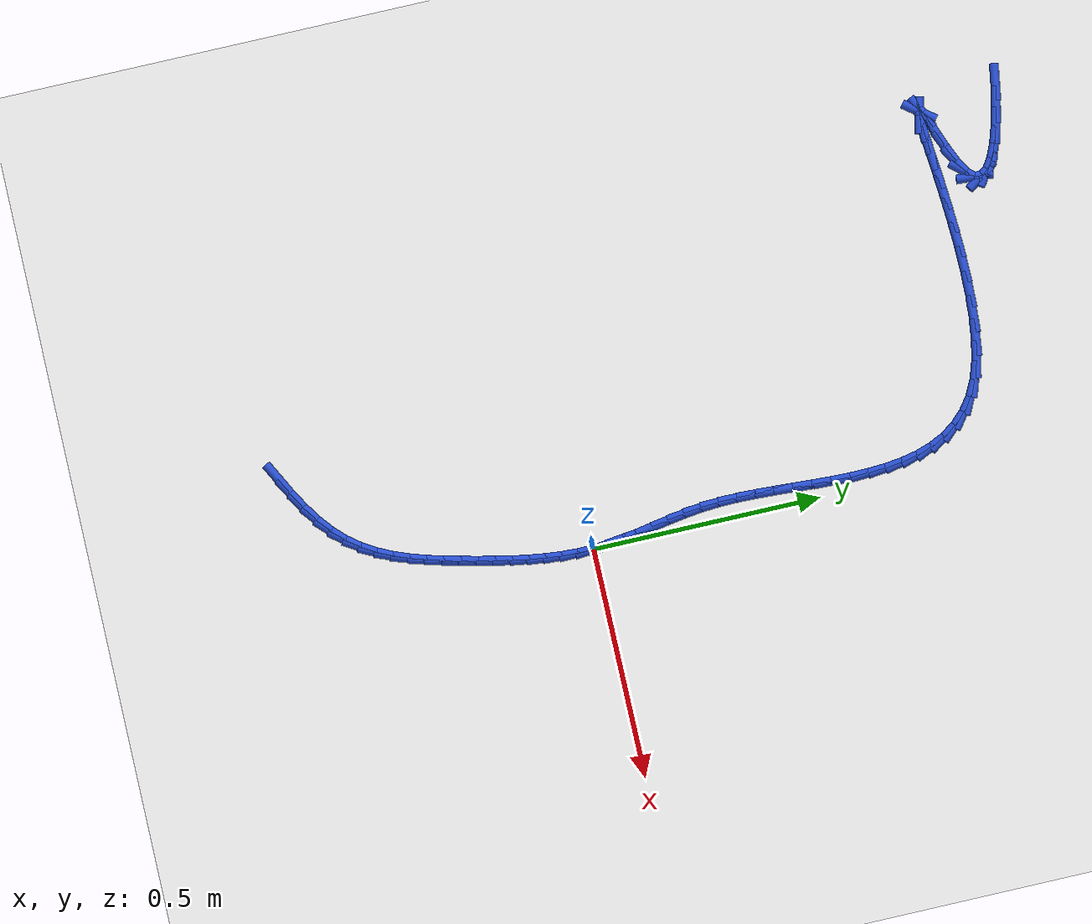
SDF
<sdf version="1.6">
 <world name="default">
  <model name="ground_plane">
   <static>1</static>
   <link name="link">
    <collision name="collision">
     <geometry><plane><normal>0 0 1</normal><size>100 100</size></plane></geometry>
     <surface><friction><ode><mu>100</mu><mu2>50</mu2></ode></friction></surface>
    </collision>
    <visual name="visual">
     <cast_shadows>0</cast_shadows>
     <geometry><plane><normal>0 0 1</normal><size>100 100</size></plane></geometry>
     <material>
      <script><uri>file://media/materials/scripts/gazebo.material</uri><name>Gazebo/WhiteGlow</name></script>
     </material>
    </visual>
   </link>
  </model>
  <model name="line">
   <link name="link_0">
    <pose>-3.469446951953614e-18 3.469446951953614e-17 0.01 0 1.57 -1.4946058032906044</pose>
    <collision name="collision">
     <geometry><cylinder><radius>0.01</radius><length>0.08</length></cylinder></geometry>
    </collision>
    <visual name="visual">
     <material>
      <script><name>Gazebo/Blue</name><uri>file://media/materials/scripts/gazebo.material</uri></script>
     </material>
     <geometry><cylinder><radius>0.01</radius><length>0.08</length></cylinder></geometry>
    </visual>
   </link>
   <link name="link_1">
    <pose>-0.0026124231290593435 0.034221659290385974 0.01 0 1.57 -1.4421469915469958</pose>
    <collision name="collision">
     <geometry><cylinder><radius>0.01</radius><length>0.08</length></cylinder></geometry>
    </collision>
    <visual name="visual">
     <material>
      <script><name>Gazebo/Blue</name><uri>file://media/materials/scripts/gazebo.material</uri></script>
     </material>
     <geometry><cylinder><radius>0.01</radius><length>0.08</length></cylinder></geometry>
    </visual>
   </link>
   <link name="link_2">
    <pose>-0.007023234924951189 0.06831783988330072 0.01 0 1.57 -1.4082024537275601</pose>
    <collision name="collision">
     <geometry><cylinder><radius>0.01</radius><length>0.08</length></cylinder></geometry>
    </collision>
    <visual name="visual">
     <material>
      <script><name>Gazebo/Blue</name><uri>file://media/materials/scripts/gazebo.material</uri></script>
     </material>
     <geometry><cylinder><radius>0.01</radius><length>0.08</length></cylinder></geometry>
    </visual>
   </link>
   <link name="link_3">
    <pose>-0.012634603180972658 0.1025247381335995 0.01 0 1.57 -1.392860196229387</pose>
    <collision name="collision">
     <geometry><cylinder><radius>0.01</radius><length>0.08</length></cylinder></geometry>
    </collision>
    <visual name="visual">
     <material>
      <script><name>Gazebo/Blue</name><uri>file://media/materials/scripts/gazebo.material</uri></script>
     </material>
     <geometry><cylinder><radius>0.01</radius><length>0.08</length></cylinder></geometry>
    </visual>
   </link>
   <link name="link_4">
    <pose>-0.018848695690420848 0.13707855039613773 0.01 0 1.57 -1.395617671099398</pose>
    <collision name="collision">
     <geometry><cylinder><radius>0.01</radius><length>0.08</length></cylinder></geometry>
    </collision>
    <visual name="visual">
     <material>
      <script><name>Gazebo/Blue</name><uri>file://media/materials/scripts/gazebo.material</uri></script>
     </material>
     <geometry><cylinder><radius>0.01</radius><length>0.08</length></cylinder></geometry>
    </visual>
   </link>
   <link name="link_5">
    <pose>-0.025067680246592876 0.17221547302577064 0.01 0 1.57 -1.4155855629912089</pose>
    <collision name="collision">
     <geometry><cylinder><radius>0.01</radius><length>0.08</length></cylinder></geometry>
    </collision>
    <visual name="visual">
     <material>
      <script><name>Gazebo/Blue</name><uri>file://media/materials/scripts/gazebo.material</uri></script>
     </material>
     <geometry><cylinder><radius>0.01</radius><length>0.08</length></cylinder></geometry>
    </visual>
   </link>
   <link name="link_6">
    <pose>-0.03069372464278583 0.20817170237735358 0.01 0 1.57 -1.451530832151726</pose>
    <collision name="collision">
     <geometry><cylinder><radius>0.01</radius><length>0.08</length></cylinder></geometry>
    </collision>
    <visual name="visual">
     <material>
      <script><name>Gazebo/Blue</name><uri>file://media/materials/scripts/gazebo.material</uri></script>
     </material>
     <geometry><cylinder><radius>0.01</radius><length>0.08</length></cylinder></geometry>
    </visual>
   </link>
   <link name="link_7">
    <pose>-0.03512899667229684 0.2451834348057419 0.01 0 1.57 -1.5015947000845757</pose>
    <collision name="collision">
     <geometry><cylinder><radius>0.01</radius><length>0.08</length></cylinder></geometry>
    </collision>
    <visual name="visual">
     <material>
      <script><name>Gazebo/Blue</name><uri>file://media/materials/scripts/gazebo.material</uri></script>
     </material>
     <geometry><cylinder><radius>0.01</radius><length>0.08</length></cylinder></geometry>
    </visual>
   </link>
   <link name="link_8">
    <pose>-0.03778361329504823 0.2834827907832505 0.01 0 1.57 -1.5531393959789488</pose>
    <collision name="collision">
     <geometry><cylinder><radius>0.01</radius><length>0.08</length></cylinder></geometry>
    </collision>
    <visual name="visual">
     <material>
      <script><name>Gazebo/Blue</name><uri>file://media/materials/scripts/gazebo.material</uri></script>
     </material>
     <geometry><cylinder><radius>0.01</radius><length>0.08</length></cylinder></geometry>
    </visual>
   </link>
   <link name="link_9">
    <pose>-0.038483009006625886 0.32308893946640915 0.01 0 1.57 1.5506167041044434</pose>
    <collision name="collision">
     <geometry><cylinder><radius>0.01</radius><length>0.08</length></cylinder></geometry>
    </collision>
    <visual name="visual">
     <material>
      <script><name>Gazebo/Blue</name><uri>file://media/materials/scripts/gazebo.material</uri></script>
     </material>
     <geometry><cylinder><radius>0.01</radius><length>0.08</length></cylinder></geometry>
    </visual>
   </link>
   <link name="link_10">
    <pose>-0.037663221066826215 0.36370796748838785 0.01 0 1.57 1.5259470286337846</pose>
    <collision name="collision">
     <geometry><cylinder><radius>0.01</radius><length>0.08</length></cylinder></geometry>
    </collision>
    <visual name="visual">
     <material>
      <script><name>Gazebo/Blue</name><uri>file://media/materials/scripts/gazebo.material</uri></script>
     </material>
     <geometry><cylinder><radius>0.01</radius><length>0.08</length></cylinder></geometry>
    </visual>
   </link>
   <link name="link_11">
    <pose>-0.03580912072811332 0.4050209221760414 0.01 0 1.57 1.5132045105530816</pose>
    <collision name="collision">
     <geometry><cylinder><radius>0.01</radius><length>0.08</length></cylinder></geometry>
    </collision>
    <visual name="visual">
     <material>
      <script><name>Gazebo/Blue</name><uri>file://media/materials/scripts/gazebo.material</uri></script>
     </material>
     <geometry><cylinder><radius>0.01</radius><length>0.08</length></cylinder></geometry>
    </visual>
   </link>
   <link name="link_12">
    <pose>-0.03340557924295126 0.446708850856224 0.01 0 1.57 1.5117400703557264</pose>
    <collision name="collision">
     <geometry><cylinder><radius>0.01</radius><length>0.08</length></cylinder></geometry>
    </collision>
    <visual name="visual">
     <material>
      <script><name>Gazebo/Blue</name><uri>file://media/materials/scripts/gazebo.material</uri></script>
     </material>
     <geometry><cylinder><radius>0.01</radius><length>0.08</length></cylinder></geometry>
    </visual>
   </link>
   <link name="link_13">
    <pose>-0.030937467863804132 0.4884528008557906 0.01 0 1.57 1.5214689738055565</pose>
    <collision name="collision">
     <geometry><cylinder><radius>0.01</radius><length>0.08</length></cylinder></geometry>
    </collision>
    <visual name="visual">
     <material>
      <script><name>Gazebo/Blue</name><uri>file://media/materials/scripts/gazebo.material</uri></script>
     </material>
     <geometry><cylinder><radius>0.01</radius><length>0.08</length></cylinder></geometry>
    </visual>
   </link>
   <link name="link_14">
    <pose>-0.028889657843136015 0.5299338195015956 0.01 0 1.57 1.5428656560708973</pose>
    <collision name="collision">
     <geometry><cylinder><radius>0.01</radius><length>0.08</length></cylinder></geometry>
    </collision>
    <visual name="visual">
     <material>
      <script><name>Gazebo/Blue</name><uri>file://media/materials/scripts/gazebo.material</uri></script>
     </material>
     <geometry><cylinder><radius>0.01</radius><length>0.08</length></cylinder></geometry>
    </visual>
   </link>
   <link name="link_15">
    <pose>-0.02774702043341098 0.5708329541204941 0.01 0 1.57 -1.5646109811323707</pose>
    <collision name="collision">
     <geometry><cylinder><radius>0.01</radius><length>0.08</length></cylinder></geometry>
    </collision>
    <visual name="visual">
     <material>
      <script><name>Gazebo/Blue</name><uri>file://media/materials/scripts/gazebo.material</uri></script>
     </material>
     <geometry><cylinder><radius>0.01</radius><length>0.08</length></cylinder></geometry>
    </visual>
   </link>
   <link name="link_16">
    <pose>-0.02799442688709313 0.6108312520393402 0.01 0 1.57 -1.5161215480757144</pose>
    <collision name="collision">
     <geometry><cylinder><radius>0.01</radius><length>0.08</length></cylinder></geometry>
    </collision>
    <visual name="visual">
     <material>
      <script><name>Gazebo/Blue</name><uri>file://media/materials/scripts/gazebo.material</uri></script>
     </material>
     <geometry><cylinder><radius>0.01</radius><length>0.08</length></cylinder></geometry>
    </visual>
   </link>
   <link name="link_17">
    <pose>-0.03011674845664654 0.6496097605849891 0.01 0 1.57 -1.4510143886595541</pose>
    <collision name="collision">
     <geometry><cylinder><radius>0.01</radius><length>0.08</length></cylinder></geometry>
    </collision>
    <visual name="visual">
     <material>
      <script><name>Gazebo/Blue</name><uri>file://media/materials/scripts/gazebo.material</uri></script>
     </material>
     <geometry><cylinder><radius>0.01</radius><length>0.08</length></cylinder></geometry>
    </visual>
   </link>
   <link name="link_18">
    <pose>-0.03459885639453528 0.6868495270842949 0.01 0 1.57 -1.3666066055802346</pose>
    <collision name="collision">
     <geometry><cylinder><radius>0.01</radius><length>0.08</length></cylinder></geometry>
    </collision>
    <visual name="visual">
     <material>
      <script><name>Gazebo/Blue</name><uri>file://media/materials/scripts/gazebo.material</uri></script>
     </material>
     <geometry><cylinder><radius>0.01</radius><length>0.08</length></cylinder></geometry>
    </visual>
   </link>
   <link name="link_19">
    <pose>-0.04192562195322343 0.7222315988641121 0.01 0 1.57 -1.260258799297225</pose>
    <collision name="collision">
     <geometry><cylinder><radius>0.01</radius><length>0.08</length></cylinder></geometry>
    </collision>
    <visual name="visual">
     <material>
      <script><name>Gazebo/Blue</name><uri>file://media/materials/scripts/gazebo.material</uri></script>
     </material>
     <geometry><cylinder><radius>0.01</radius><length>0.08</length></cylinder></geometry>
    </visual>
   </link>
   <link name="link_20">
    <pose>-0.0525819163851751 0.7554370232512961 0.01 0 1.57 -1.1304470077338153</pose>
    <collision name="collision">
     <geometry><cylinder><radius>0.01</radius><length>0.08</length></cylinder></geometry>
    </collision>
    <visual name="visual">
     <material>
      <script><name>Gazebo/Blue</name><uri>file://media/materials/scripts/gazebo.material</uri></script>
     </material>
     <geometry><cylinder><radius>0.01</radius><length>0.08</length></cylinder></geometry>
    </visual>
   </link>
   <link name="link_21">
    <pose>-0.06705261094285433 0.786146847572701 0.01 0 1.57 -0.9785095552409157</pose>
    <collision name="collision">
     <geometry><cylinder><radius>0.01</radius><length>0.08</length></cylinder></geometry>
    </collision>
    <visual name="visual">
     <material>
      <script><name>Gazebo/Blue</name><uri>file://media/materials/scripts/gazebo.material</uri></script>
     </material>
     <geometry><cylinder><radius>0.01</radius><length>0.08</length></cylinder></geometry>
    </visual>
   </link>
   <link name="link_22">
    <pose>-0.08582257687872528 0.8140421191551817 0.01 0 1.57 -0.810388008019312</pose>
    <collision name="collision">
     <geometry><cylinder><radius>0.01</radius><length>0.08</length></cylinder></geometry>
    </collision>
    <visual name="visual">
     <material>
      <script><name>Gazebo/Blue</name><uri>file://media/materials/scripts/gazebo.material</uri></script>
     </material>
     <geometry><cylinder><radius>0.01</radius><length>0.08</length></cylinder></geometry>
    </visual>
   </link>
   <link name="link_23">
    <pose>-0.10937668544525198 0.8388038853255926 0.01 0 1.57 -0.6366262468930142</pose>
    <collision name="collision">
     <geometry><cylinder><radius>0.01</radius><length>0.08</length></cylinder></geometry>
    </collision>
    <visual name="visual">
     <material>
      <script><name>Gazebo/Blue</name><uri>file://media/materials/scripts/gazebo.material</uri></script>
     </material>
     <geometry><cylinder><radius>0.01</radius><length>0.08</length></cylinder></geometry>
    </visual>
   </link>
   <link name="link_24">
    <pose>-0.1381998078948985 0.8601131934107883 0.01 0 1.57 -0.4694011049189898</pose>
    <collision name="collision">
     <geometry><cylinder><radius>0.01</radius><length>0.08</length></cylinder></geometry>
    </collision>
    <visual name="visual">
     <material>
      <script><name>Gazebo/Blue</name><uri>file://media/materials/scripts/gazebo.material</uri></script>
     </material>
     <geometry><cylinder><radius>0.01</radius><length>0.08</length></cylinder></geometry>
    </visual>
   </link>
   <link name="link_25">
    <pose>-0.1727768154801288 0.8776510907376236 0.01 0 1.57 -0.3194768551653633</pose>
    <collision name="collision">
     <geometry><cylinder><radius>0.01</radius><length>0.08</length></cylinder></geometry>
    </collision>
    <visual name="visual">
     <material>
      <script><name>Gazebo/Blue</name><uri>file://media/materials/scripts/gazebo.material</uri></script>
     </material>
     <geometry><cylinder><radius>0.01</radius><length>0.08</length></cylinder></geometry>
    </visual>
   </link>
   <link name="link_26">
    <pose>-0.2135224040643267 0.8911300944748518 0.01 0 1.57 -0.20392701906793143</pose>
    <collision name="collision">
     <geometry><cylinder><radius>0.01</radius><length>0.08</length></cylinder></geometry>
    </collision>
    <visual name="visual">
     <material>
      <script><name>Gazebo/Blue</name><uri>file://media/materials/scripts/gazebo.material</uri></script>
     </material>
     <geometry><cylinder><radius>0.01</radius><length>0.08</length></cylinder></geometry>
    </visual>
   </link>
   <link name="link_27">
    <pose>-0.259851551508749 0.9007110408940092 0.01 0 1.57 -0.1215271285258354</pose>
    <collision name="collision">
     <geometry><cylinder><radius>0.01</radius><length>0.08</length></cylinder></geometry>
    </collision>
    <visual name="visual">
     <material>
      <script><name>Gazebo/Blue</name><uri>file://media/materials/scripts/gazebo.material</uri></script>
     </material>
     <geometry><cylinder><radius>0.01</radius><length>0.08</length></cylinder></geometry>
    </visual>
   </link>
   <link name="link_28">
    <pose>-0.3104345983256323 0.9068886955822022 0.01 0 1.57 -0.06118965568954185</pose>
    <collision name="collision">
     <geometry><cylinder><radius>0.01</radius><length>0.08</length></cylinder></geometry>
    </collision>
    <visual name="visual">
     <material>
      <script><name>Gazebo/Blue</name><uri>file://media/materials/scripts/gazebo.material</uri></script>
     </material>
     <geometry><cylinder><radius>0.01</radius><length>0.08</length></cylinder></geometry>
    </visual>
   </link>
   <link name="link_29">
    <pose>-0.36392411754773313 0.9101657918738825 0.01 0 1.57 -0.01597128774711251</pose>
    <collision name="collision">
     <geometry><cylinder><radius>0.01</radius><length>0.08</length></cylinder></geometry>
    </collision>
    <visual name="visual">
     <material>
      <script><name>Gazebo/Blue</name><uri>file://media/materials/scripts/gazebo.material</uri></script>
     </material>
     <geometry><cylinder><radius>0.01</radius><length>0.08</length></cylinder></geometry>
    </visual>
   </link>
   <link name="link_30">
    <pose>-0.4189726822078089 0.9110450631035029 0.01 0 1.57 0.018380433122437503</pose>
    <collision name="collision">
     <geometry><cylinder><radius>0.01</radius><length>0.08</length></cylinder></geometry>
    </collision>
    <visual name="visual">
     <material>
      <script><name>Gazebo/Blue</name><uri>file://media/materials/scripts/gazebo.material</uri></script>
     </material>
     <geometry><cylinder><radius>0.01</radius><length>0.08</length></cylinder></geometry>
    </visual>
   </link>
   <link name="link_31">
    <pose>-0.4742328653386162 0.9100292426055155 0.01 0 1.57 0.04446410075200229</pose>
    <collision name="collision">
     <geometry><cylinder><radius>0.01</radius><length>0.08</length></cylinder></geometry>
    </collision>
    <visual name="visual">
     <material>
      <script><name>Gazebo/Blue</name><uri>file://media/materials/scripts/gazebo.material</uri></script>
     </material>
     <geometry><cylinder><radius>0.01</radius><length>0.08</length></cylinder></geometry>
    </visual>
   </link>
   <link name="link_32">
    <pose>-0.5283572399729122 0.9076210637143733 0.01 0 1.57 0.06377341812137298</pose>
    <collision name="collision">
     <geometry><cylinder><radius>0.01</radius><length>0.08</length></cylinder></geometry>
    </collision>
    <visual name="visual">
     <material>
      <script><name>Gazebo/Blue</name><uri>file://media/materials/scripts/gazebo.material</uri></script>
     </material>
     <geometry><cylinder><radius>0.01</radius><length>0.08</length></cylinder></geometry>
    </visual>
   </link>
   <link name="link_33">
    <pose>-0.5799983791434535 0.9043232597645285 0.01 0 1.57 0.07691674731030786</pose>
    <collision name="collision">
     <geometry><cylinder><radius>0.01</radius><length>0.08</length></cylinder></geometry>
    </collision>
    <visual name="visual">
     <material>
      <script><name>Gazebo/Blue</name><uri>file://media/materials/scripts/gazebo.material</uri></script>
     </material>
     <geometry><cylinder><radius>0.01</radius><length>0.08</length></cylinder></geometry>
    </visual>
   </link>
   <link name="link_34">
    <pose>-0.6278088558829971 0.9006385640904335 0.01 0 1.57 0.08351754673476734</pose>
    <collision name="collision">
     <geometry><cylinder><radius>0.01</radius><length>0.08</length></cylinder></geometry>
    </collision>
    <visual name="visual">
     <material>
      <script><name>Gazebo/Blue</name><uri>file://media/materials/scripts/gazebo.material</uri></script>
     </material>
     <geometry><cylinder><radius>0.01</radius><length>0.08</length></cylinder></geometry>
    </visual>
   </link>
   <link name="link_35">
    <pose>-0.6704412432242999 0.8970697100265408 0.01 0 1.57 0.08152851260966233</pose>
    <collision name="collision">
     <geometry><cylinder><radius>0.01</radius><length>0.08</length></cylinder></geometry>
    </collision>
    <visual name="visual">
     <material>
      <script><name>Gazebo/Blue</name><uri>file://media/materials/scripts/gazebo.material</uri></script>
     </material>
     <geometry><cylinder><radius>0.01</radius><length>0.08</length></cylinder></geometry>
    </visual>
   </link>
   <link name="link_36">
    <pose>-0.706548114200119 0.8941194309073028 0.01 0 1.57 0.06468880120953734</pose>
    <collision name="collision">
     <geometry><cylinder><radius>0.01</radius><length>0.08</length></cylinder></geometry>
    </collision>
    <visual name="visual">
     <material>
      <script><name>Gazebo/Blue</name><uri>file://media/materials/scripts/gazebo.material</uri></script>
     </material>
     <geometry><cylinder><radius>0.01</radius><length>0.08</length></cylinder></geometry>
    </visual>
   </link>
   <link name="link_37">
    <pose>-0.7347820418432112 0.8922904600671718 0.01 0 1.57 0.010777640823340822</pose>
    <collision name="collision">
     <geometry><cylinder><radius>0.01</radius><length>0.08</length></cylinder></geometry>
    </collision>
    <visual name="visual">
     <material>
      <script><name>Gazebo/Blue</name><uri>file://media/materials/scripts/gazebo.material</uri></script>
     </material>
     <geometry><cylinder><radius>0.01</radius><length>0.08</length></cylinder></geometry>
    </visual>
   </link>
   <link name="link_38">
    <pose>-0.7537955991863332 0.8920855308406005 0.01 0 1.57 -0.22374170483796854</pose>
    <collision name="collision">
     <geometry><cylinder><radius>0.01</radius><length>0.08</length></cylinder></geometry>
    </collision>
    <visual name="visual">
     <material>
      <script><name>Gazebo/Blue</name><uri>file://media/materials/scripts/gazebo.material</uri></script>
     </material>
     <geometry><cylinder><radius>0.01</radius><length>0.08</length></cylinder></geometry>
    </visual>
   </link>
   <link name="link_39">
    <pose>-0.7622413592622418 0.8940073765620411 0.01 0 1.57 0.9194741668668903</pose>
    <collision name="collision">
     <geometry><cylinder><radius>0.01</radius><length>0.08</length></cylinder></geometry>
    </collision>
    <visual name="visual">
     <material>
      <script><name>Gazebo/Blue</name><uri>file://media/materials/scripts/gazebo.material</uri></script>
     </material>
     <geometry><cylinder><radius>0.01</radius><length>0.08</length></cylinder></geometry>
    </visual>
   </link>
   <link name="link_40">
    <pose>-0.7587718951036945 0.8985587305659463 0.01 0 1.57 0.43048878484852804</pose>
    <collision name="collision">
     <geometry><cylinder><radius>0.01</radius><length>0.08</length></cylinder></geometry>
    </collision>
    <visual name="visual">
     <material>
      <script><name>Gazebo/Blue</name><uri>file://media/materials/scripts/gazebo.material</uri></script>
     </material>
     <geometry><cylinder><radius>0.01</radius><length>0.08</length></cylinder></geometry>
    </visual>
   </link>
   <link name="link_41">
    <pose>-0.7420397971591669 0.9062423232550538 0.01 0 1.57 0.3556529765919658</pose>
    <collision name="collision">
     <geometry><cylinder><radius>0.01</radius><length>0.08</length></cylinder></geometry>
    </collision>
    <visual name="visual">
     <material>
      <script><name>Gazebo/Blue</name><uri>file://media/materials/scripts/gazebo.material</uri></script>
     </material>
     <geometry><cylinder><radius>0.01</radius><length>0.08</length></cylinder></geometry>
    </visual>
   </link>
   <link name="link_42">
    <pose>-0.7122899624817576 0.9172928404972882 0.01 0 1.57 0.3572307348656074</pose>
    <collision name="collision">
     <geometry><cylinder><radius>0.01</radius><length>0.08</length></cylinder></geometry>
    </collision>
    <visual name="visual">
     <material>
      <script><name>Gazebo/Blue</name><uri>file://media/materials/scripts/gazebo.material</uri></script>
     </material>
     <geometry><cylinder><radius>0.01</radius><length>0.08</length></cylinder></geometry>
    </visual>
   </link>
   <link name="link_43">
    <pose>-0.6757174319126646 0.9309433372440624 0.01 0 1.57 0.402582470246729</pose>
    <collision name="collision">
     <geometry><cylinder><radius>0.01</radius><length>0.08</length></cylinder></geometry>
    </collision>
    <visual name="visual">
     <material>
      <script><name>Gazebo/Blue</name><uri>file://media/materials/scripts/gazebo.material</uri></script>
     </material>
     <geometry><cylinder><radius>0.01</radius><length>0.08</length></cylinder></geometry>
    </visual>
   </link>
   <link name="link_44">
    <pose>-0.6399068203657324 0.9461929513514199 0.01 0 1.57 0.523259841015723</pose>
    <collision name="collision">
     <geometry><cylinder><radius>0.01</radius><length>0.08</length></cylinder></geometry>
    </collision>
    <visual name="visual">
     <material>
      <script><name>Gazebo/Blue</name><uri>file://media/materials/scripts/gazebo.material</uri></script>
     </material>
     <geometry><cylinder><radius>0.01</radius><length>0.08</length></cylinder></geometry>
    </visual>
   </link>
   <link name="link_45">
    <pose>-0.6124346836049726 0.9620415843243194 0.01 0 1.57 0.8435571485170217</pose>
    <collision name="collision">
     <geometry><cylinder><radius>0.01</radius><length>0.08</length></cylinder></geometry>
    </collision>
    <visual name="visual">
     <material>
      <script><name>Gazebo/Blue</name><uri>file://media/materials/scripts/gazebo.material</uri></script>
     </material>
     <geometry><cylinder><radius>0.01</radius><length>0.08</length></cylinder></geometry>
    </visual>
   </link>
   <link name="link_46">
    <pose>-0.5984852726740374 0.977715821740542 0.01 0 1.57 1.5078199339795337</pose>
    <collision name="collision">
     <geometry><cylinder><radius>0.01</radius><length>0.08</length></cylinder></geometry>
    </collision>
    <visual name="visual">
     <material>
      <script><name>Gazebo/Blue</name><uri>file://media/materials/scripts/gazebo.material</uri></script>
     </material>
     <geometry><cylinder><radius>0.01</radius><length>0.08</length></cylinder></geometry>
    </visual>
   </link>
   <link name="link_47">
    <pose>-0.5975224465508996 0.9929842878908055 0.01 0 1.57 -0.9441405588081778</pose>
    <collision name="collision">
     <geometry><cylinder><radius>0.01</radius><length>0.08</length></cylinder></geometry>
    </collision>
    <visual name="visual">
     <material>
      <script><name>Gazebo/Blue</name><uri>file://media/materials/scripts/gazebo.material</uri></script>
     </material>
     <geometry><cylinder><radius>0.01</radius><length>0.08</length></cylinder></geometry>
    </visual>
   </link>
   <link name="link_48">
    <pose>-0.6081730205876004 1.0076949215681312 0.01 0 1.57 -0.5904359452761297</pose>
    <collision name="collision">
     <geometry><cylinder><radius>0.01</radius><length>0.08</length></cylinder></geometry>
    </collision>
    <visual name="visual">
     <material>
      <script><name>Gazebo/Blue</name><uri>file://media/materials/scripts/gazebo.material</uri></script>
     </material>
     <geometry><cylinder><radius>0.01</radius><length>0.08</length></cylinder></geometry>
    </visual>
   </link>
   <link name="link_49">
    <pose>-0.6290638101361814 1.0216956615655417 0.01 0 1.57 -0.415782775708621</pose>
    <collision name="collision">
     <geometry><cylinder><radius>0.01</radius><length>0.08</length></cylinder></geometry>
    </collision>
    <visual name="visual">
     <material>
      <script><name>Gazebo/Blue</name><uri>file://media/materials/scripts/gazebo.material</uri></script>
     </material>
     <geometry><cylinder><radius>0.01</radius><length>0.08</length></cylinder></geometry>
    </visual>
   </link>
   <link name="link_50">
    <pose>-0.6588216305486843 1.0348344466760586 0.01 0 1.57 -0.314668325253031</pose>
    <collision name="collision">
     <geometry><cylinder><radius>0.01</radius><length>0.08</length></cylinder></geometry>
    </collision>
    <visual name="visual">
     <material>
      <script><name>Gazebo/Blue</name><uri>file://media/materials/scripts/gazebo.material</uri></script>
     </material>
     <geometry><cylinder><radius>0.01</radius><length>0.08</length></cylinder></geometry>
    </visual>
   </link>
   <link name="link_51">
    <pose>-0.6960732971771507 1.0469592156927043 0.01 0 1.57 -0.24748580707257362</pose>
    <collision name="collision">
     <geometry><cylinder><radius>0.01</radius><length>0.08</length></cylinder></geometry>
    </collision>
    <visual name="visual">
     <material>
      <script><name>Gazebo/Blue</name><uri>file://media/materials/scripts/gazebo.material</uri></script>
     </material>
     <geometry><cylinder><radius>0.01</radius><length>0.08</length></cylinder></geometry>
    </visual>
   </link>
   <link name="link_52">
    <pose>-0.7394456253736219 1.0579179074085003 0.01 0 1.57 -0.19772708582464</pose>
    <collision name="collision">
     <geometry><cylinder><radius>0.01</radius><length>0.08</length></cylinder></geometry>
    </collision>
    <visual name="visual">
     <material>
      <script><name>Gazebo/Blue</name><uri>file://media/materials/scripts/gazebo.material</uri></script>
     </material>
     <geometry><cylinder><radius>0.01</radius><length>0.08</length></cylinder></geometry>
    </visual>
   </link>
   <link name="link_53">
    <pose>-0.7875654304901394 1.067558460616468 0.01 0 1.57 -0.15735412035748672</pose>
    <collision name="collision">
     <geometry><cylinder><radius>0.01</radius><length>0.08</length></cylinder></geometry>
    </collision>
    <visual name="visual">
     <material>
      <script><name>Gazebo/Blue</name><uri>file://media/materials/scripts/gazebo.material</uri></script>
     </material>
     <geometry><cylinder><radius>0.01</radius><length>0.08</length></cylinder></geometry>
    </visual>
   </link>
   <link name="link_210">
    <pose>-0.29774997016400834 -0.6232458484564712 0.01 0 1.57 0.48227275308044326</pose>
    <collision name="collision">
     <geometry><cylinder><radius>0.01</radius><length>0.08</length></cylinder></geometry>
    </collision>
    <visual name="visual">
     <material>
      <script><name>Gazebo/Blue</name><uri>file://media/materials/scripts/gazebo.material</uri></script>
     </material>
     <geometry><cylinder><radius>0.01</radius><length>0.08</length></cylinder></geometry>
    </visual>
   </link>
   <link name="link_211">
    <pose>-0.26107976639171265 -0.604048885984705 0.01 0 1.57 0.529767102975201</pose>
    <collision name="collision">
     <geometry><cylinder><radius>0.01</radius><length>0.08</length></cylinder></geometry>
    </collision>
    <visual name="visual">
     <material>
      <script><name>Gazebo/Blue</name><uri>file://media/materials/scripts/gazebo.material</uri></script>
     </material>
     <geometry><cylinder><radius>0.01</radius><length>0.08</length></cylinder></geometry>
    </visual>
   </link>
   <link name="link_212">
    <pose>-0.2261745399312988 -0.5836082385931232 0.01 0 1.57 0.5949936808608366</pose>
    <collision name="collision">
     <geometry><cylinder><radius>0.01</radius><length>0.08</length></cylinder></geometry>
    </collision>
    <visual name="visual">
     <material>
      <script><name>Gazebo/Blue</name><uri>file://media/materials/scripts/gazebo.material</uri></script>
     </material>
     <geometry><cylinder><radius>0.01</radius><length>0.08</length></cylinder></geometry>
    </visual>
   </link>
   <link name="link_213">
    <pose>-0.19367228983446377 -0.5616103146214758 0.01 0 1.57 0.6809145717227579</pose>
    <collision name="collision">
     <geometry><cylinder><radius>0.01</radius><length>0.08</length></cylinder></geometry>
    </collision>
    <visual name="visual">
     <material>
      <script><name>Gazebo/Blue</name><uri>file://media/materials/scripts/gazebo.material</uri></script>
     </material>
     <geometry><cylinder><radius>0.01</radius><length>0.08</length></cylinder></geometry>
    </visual>
   </link>
   <link name="link_214">
    <pose>-0.1642110151529049 -0.5377415224095132 0.01 0 1.57 0.7904801404624863</pose>
    <collision name="collision">
     <geometry><cylinder><radius>0.01</radius><length>0.08</length></cylinder></geometry>
    </collision>
    <visual name="visual">
     <material>
      <script><name>Gazebo/Blue</name><uri>file://media/materials/scripts/gazebo.material</uri></script>
     </material>
     <geometry><cylinder><radius>0.01</radius><length>0.08</length></cylinder></geometry>
    </visual>
   </link>
   <link name="link_215">
    <pose>-0.1384238537817688 -0.5116909204460888 0.01 0 1.57 0.9132008408188547</pose>
    <collision name="collision">
     <geometry><cylinder><radius>0.01</radius><length>0.08</length></cylinder></geometry>
    </collision>
    <visual name="visual">
     <material>
      <script><name>Gazebo/Blue</name><uri>file://media/materials/scripts/gazebo.material</uri></script>
     </material>
     <geometry><cylinder><radius>0.01</radius><length>0.08</length></cylinder></geometry>
    </visual>
   </link>
   <link name="link_216">
    <pose>-0.1165477764903348 -0.48336354503171575 0.01 0 1.57 1.0251766513666185</pose>
    <collision name="collision">
     <geometry><cylinder><radius>0.01</radius><length>0.08</length></cylinder></geometry>
    </collision>
    <visual name="visual">
     <material>
      <script><name>Gazebo/Blue</name><uri>file://media/materials/scripts/gazebo.material</uri></script>
     </material>
     <geometry><cylinder><radius>0.01</radius><length>0.08</length></cylinder></geometry>
    </visual>
   </link>
   <link name="link_217">
    <pose>-0.09813661400320685 -0.45303685885534134 0.01 0 1.57 1.1208804373121022</pose>
    <collision name="collision">
     <geometry><cylinder><radius>0.01</radius><length>0.08</length></cylinder></geometry>
    </collision>
    <visual name="visual">
     <material>
      <script><name>Gazebo/Blue</name><uri>file://media/materials/scripts/gazebo.material</uri></script>
     </material>
     <geometry><cylinder><radius>0.01</radius><length>0.08</length></cylinder></geometry>
    </visual>
   </link>
   <link name="link_218">
    <pose>-0.08267654402527666 -0.4210252068967334 0.01 0 1.57 1.1988437039457214</pose>
    <collision name="collision">
     <geometry><cylinder><radius>0.01</radius><length>0.08</length></cylinder></geometry>
    </collision>
    <visual name="visual">
     <material>
      <script><name>Gazebo/Blue</name><uri>file://media/materials/scripts/gazebo.material</uri></script>
     </material>
     <geometry><cylinder><radius>0.01</radius><length>0.08</length></cylinder></geometry>
    </visual>
   </link>
   <link name="link_219">
    <pose>-0.06965374426143563 -0.387642934135659 0.01 0 1.57 1.2590134803176516</pose>
    <collision name="collision">
     <geometry><cylinder><radius>0.01</radius><length>0.08</length></cylinder></geometry>
    </collision>
    <visual name="visual">
     <material>
      <script><name>Gazebo/Blue</name><uri>file://media/materials/scripts/gazebo.material</uri></script>
     </material>
     <geometry><cylinder><radius>0.01</radius><length>0.08</length></cylinder></geometry>
    </visual>
   </link>
   <link name="link_220">
    <pose>-0.05855439241657607 -0.3532043855518875 0.01 0 1.57 1.302031270166534</pose>
    <collision name="collision">
     <geometry><cylinder><radius>0.01</radius><length>0.08</length></cylinder></geometry>
    </collision>
    <visual name="visual">
     <material>
      <script><name>Gazebo/Blue</name><uri>file://media/materials/scripts/gazebo.material</uri></script>
     </material>
     <geometry><cylinder><radius>0.01</radius><length>0.08</length></cylinder></geometry>
    </visual>
   </link>
   <link name="link_221">
    <pose>-0.048864666195589324 -0.3180239061251859 0.01 0 1.57 1.3286767753062476</pose>
    <collision name="collision">
     <geometry><cylinder><radius>0.01</radius><length>0.08</length></cylinder></geometry>
    </collision>
    <visual name="visual">
     <material>
      <script><name>Gazebo/Blue</name><uri>file://media/materials/scripts/gazebo.material</uri></script>
     </material>
     <geometry><cylinder><radius>0.01</radius><length>0.08</length></cylinder></geometry>
    </visual>
   </link>
   <link name="link_222">
    <pose>-0.04007074330336706 -0.28241584083532206 0.01 0 1.57 1.3405551356718466</pose>
    <collision name="collision">
     <geometry><cylinder><radius>0.01</radius><length>0.08</length></cylinder></geometry>
    </collision>
    <visual name="visual">
     <material>
      <script><name>Gazebo/Blue</name><uri>file://media/materials/scripts/gazebo.material</uri></script>
     </material>
     <geometry><cylinder><radius>0.01</radius><length>0.08</length></cylinder></geometry>
    </visual>
   </link>
   <link name="link_223">
    <pose>-0.03169492784259548 -0.24668250292334945 0.01 0 1.57 1.3508237374527667</pose>
    <collision name="collision">
     <geometry><cylinder><radius>0.01</radius><length>0.08</length></cylinder></geometry>
    </collision>
    <visual name="visual">
     <material>
      <script><name>Gazebo/Blue</name><uri>file://media/materials/scripts/gazebo.material</uri></script>
     </material>
     <geometry><cylinder><radius>0.01</radius><length>0.08</length></cylinder></geometry>
    </visual>
   </link>
   <link name="link_224">
    <pose>-0.023711235462558763 -0.21097576507620855 0.01 0 1.57 1.3684350827100273</pose>
    <collision name="collision">
     <geometry><cylinder><radius>0.01</radius><length>0.08</length></cylinder></geometry>
    </collision>
    <visual name="visual">
     <material>
      <script><name>Gazebo/Blue</name><uri>file://media/materials/scripts/gazebo.material</uri></script>
     </material>
     <geometry><cylinder><radius>0.01</radius><length>0.08</length></cylinder></geometry>
    </visual>
   </link>
   <link name="link_225">
    <pose>-0.016400925305953166 -0.17534517387970938 0.01 0 1.57 1.3938342533878034</pose>
    <collision name="collision">
     <geometry><cylinder><radius>0.01</radius><length>0.08</length></cylinder></geometry>
    </collision>
    <visual name="visual">
     <material>
      <script><name>Gazebo/Blue</name><uri>file://media/materials/scripts/gazebo.material</uri></script>
     </material>
     <geometry><cylinder><radius>0.01</radius><length>0.08</length></cylinder></geometry>
    </visual>
   </link>
   <link name="link_226">
    <pose>-0.010051137147796044 -0.13983831740079938 0.01 0 1.57 1.427396600702254</pose>
    <collision name="collision">
     <geometry><cylinder><radius>0.01</radius><length>0.08</length></cylinder></geometry>
    </collision>
    <visual name="visual">
     <material>
      <script><name>Gazebo/Blue</name><uri>file://media/materials/scripts/gazebo.material</uri></script>
     </material>
     <geometry><cylinder><radius>0.01</radius><length>0.08</length></cylinder></geometry>
    </visual>
   </link>
   <link name="link_227">
    <pose>-0.004949010763104783 -0.10450278370642604 0.01 0 1.57 1.4695585386602954</pose>
    <collision name="collision">
     <geometry><cylinder><radius>0.01</radius><length>0.08</length></cylinder></geometry>
    </collision>
    <visual name="visual">
     <material>
      <script><name>Gazebo/Blue</name><uri>file://media/materials/scripts/gazebo.material</uri></script>
     </material>
     <geometry><cylinder><radius>0.01</radius><length>0.08</length></cylinder></geometry>
    </visual>
   </link>
   <link name="link_228">
    <pose>-0.0013816859268966997 -0.06938616086353601 0.01 0 1.57 1.5207555747142603</pose>
    <collision name="collision">
     <geometry><cylinder><radius>0.01</radius><length>0.08</length></cylinder></geometry>
    </collision>
    <visual name="visual">
     <material>
      <script><name>Gazebo/Blue</name><uri>file://media/materials/scripts/gazebo.material</uri></script>
     </material>
     <geometry><cylinder><radius>0.01</radius><length>0.08</length></cylinder></geometry>
    </visual>
   </link>
   <link name="link_229">
    <pose>0.0003636975858106548 -0.03453603693907843 0.01 0 1.57 -1.5602657571604446</pose>
    <collision name="collision">
     <geometry><cylinder><radius>0.01</radius><length>0.08</length></cylinder></geometry>
    </collision>
    <visual name="visual">
     <material>
      <script><name>Gazebo/Blue</name><uri>file://media/materials/scripts/gazebo.material</uri></script>
     </material>
     <geometry><cylinder><radius>0.01</radius><length>0.08</length></cylinder></geometry>
    </visual>
   </link>
   <link name="link_230">
    <pose>8.673617379884035e-18 2.7755575615628914e-17 0.01 0 1.57 -1.4902113073229175</pose>
    <collision name="collision">
     <geometry><cylinder><radius>0.01</radius><length>0.08</length></cylinder></geometry>
    </collision>
    <visual name="visual">
     <material>
      <script><name>Gazebo/Blue</name><uri>file://media/materials/scripts/gazebo.material</uri></script>
     </material>
     <geometry><cylinder><radius>0.01</radius><length>0.08</length></cylinder></geometry>
    </visual>
   </link>
   <link name="link_231">
    <pose>-0.0027599184593460144 0.034174361886751964 0.01 0 1.57 -1.410961273105242</pose>
    <collision name="collision">
     <geometry><cylinder><radius>0.01</radius><length>0.08</length></cylinder></geometry>
    </collision>
    <visual name="visual">
     <material>
      <script><name>Gazebo/Blue</name><uri>file://media/materials/scripts/gazebo.material</uri></script>
     </material>
     <geometry><cylinder><radius>0.01</radius><length>0.08</length></cylinder></geometry>
    </visual>
   </link>
   <link name="link_232">
    <pose>-0.008203197567244795 0.06793946065422991 0.01 0 1.57 -1.450635255316775</pose>
    <collision name="collision">
     <geometry><cylinder><radius>0.01</radius><length>0.08</length></cylinder></geometry>
    </collision>
    <visual name="visual">
     <material>
      <script><name>Gazebo/Blue</name><uri>file://media/materials/scripts/gazebo.material</uri></script>
     </material>
     <geometry><cylinder><radius>0.01</radius><length>0.08</length></cylinder></geometry>
    </visual>
   </link>
  </model>
 </world>
</sdf>
